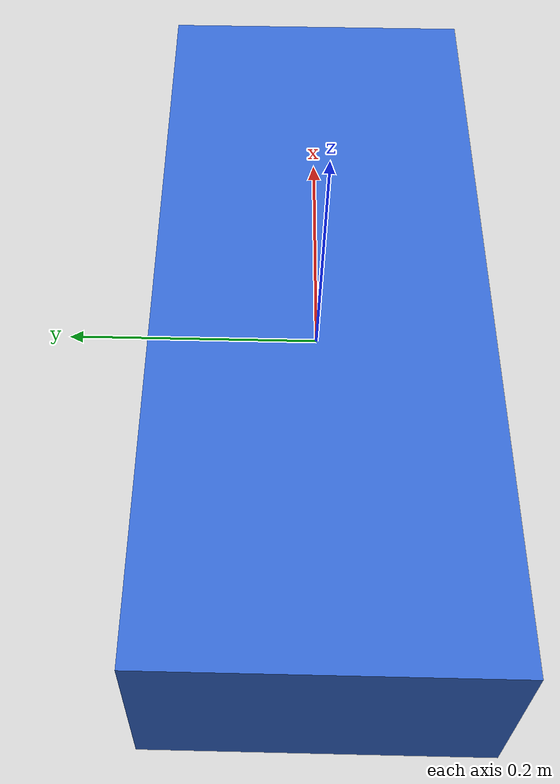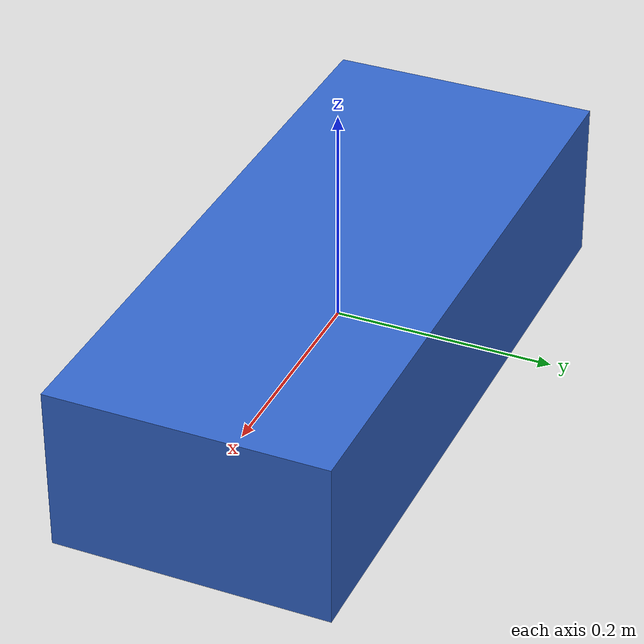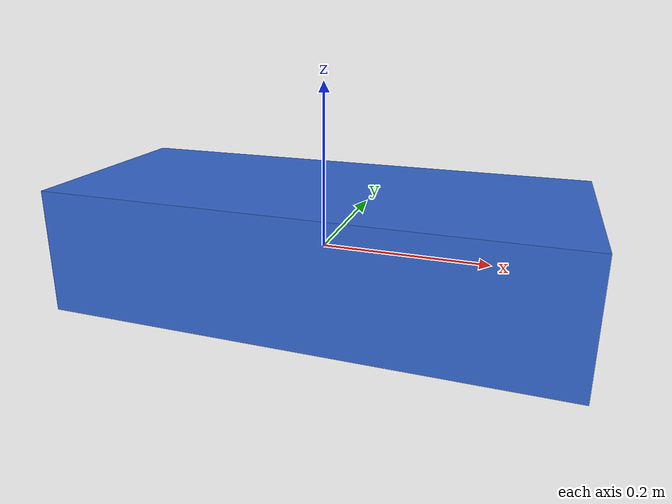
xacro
<?xml version="1.0"?>
<robot xmlns:xacro="http://www.ros.org/wiki/xacro">

    <!-- Chassis dimensions in meters -->
    <xacro:property name="chassis_length" value="0.6096"/>  <!-- 24 inches -->
    <xacro:property name="chassis_width" value="0.254"/>    <!-- 10 inches -->
    <xacro:property name="chassis_height" value="0.1524"/>  <!-- 6 inches -->
    <xacro:property name="chassis_mass" value="5.0"/>       <!-- kg, adjust as needed -->

    <link name="chassis_link">
        <!-- Visual representation -->
        <visual>
            <origin xyz="0 0 0" rpy="0 0 0"/>
            <geometry>
                <box size="${chassis_length} ${chassis_width} ${chassis_height}"/>
            </geometry>
            <material name="chassis_blue">
                <color rgba="0.2 0.4 0.8 1.0"/>
            </material>
        </visual>

        <!-- Collision representation -->
        <collision>
            <origin xyz="0 0 0" rpy="0 0 0"/>
            <geometry>
                <box size="${chassis_length} ${chassis_width} ${chassis_height}"/>
            </geometry>
        </collision>

        <!-- Inertial properties -->
        <inertial>
            <origin xyz="0 0 0" rpy="0 0 0"/>
            <mass value="${chassis_mass}"/>
            <inertia
                ixx="${(1/12) * chassis_mass * (chassis_width*chassis_width + chassis_height*chassis_height)}"
                ixy="0.0"
                ixz="0.0"
                iyy="${(1/12) * chassis_mass * (chassis_length*chassis_length + chassis_height*chassis_height)}"
                iyz="0.0"
                izz="${(1/12) * chassis_mass * (chassis_length*chassis_length + chassis_width*chassis_width)}"/>
        </inertial>
    </link>

</robot>
